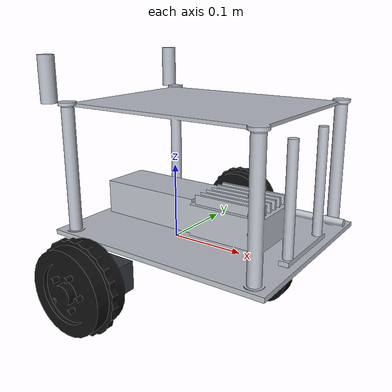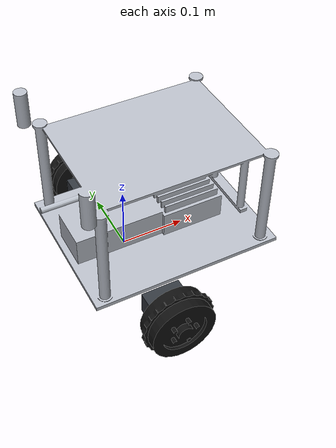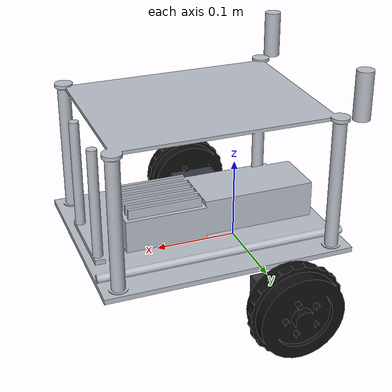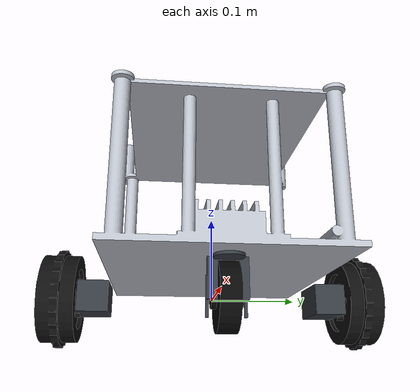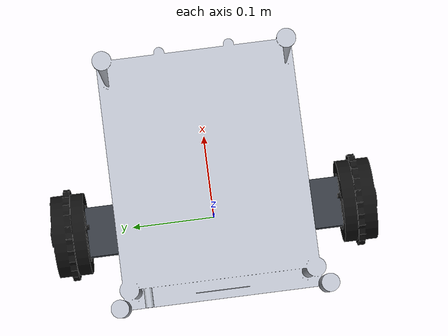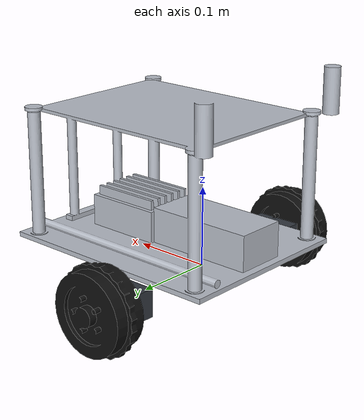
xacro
<?xml version="1.0"?>
<robot xmlns:xacro="http://www.ros.org/wiki/xacro">

    <xacro:include filename="mass_properties.xacro"/>
    <xacro:include filename="inertial_macros.xacro"/>

    <xacro:property name="mesh" value="package://mobile_robot_description/meshes"/>
    <xacro:property name="track_half" value="0.175"/>
    <xacro:property name="wheel_r" value="0.05"/>
    <xacro:property name="wheel_w" value="0.04"/>
    <!-- actuators: 12 V gear motor after the gearbox. torque [N*m] and speed [rad/s] limits at the wheel -->
    <xacro:property name="wheel_max_torque" value="2.0"/>
    <xacro:property name="wheel_max_speed" value="12.0"/>

    <material name="aluminium"><color rgba="0.72 0.74 0.78 1"/></material>
    <material name="rubber"><color rgba="0.06 0.06 0.06 1"/></material>
    <material name="motor"><color rgba="0.20 0.22 0.25 1"/></material>
    <material name="orange"><color rgba="1 0.3 0.1 1"/></material>
    <material name="black"><color rgba="0.03 0.03 0.03 1"/></material>
    <material name="lidar_grey"><color rgba="0.25 0.27 0.30 1"/></material>

    <!-- ===================================================================== sprung body -->
    <link name="base_link"/>

    <joint name="chassis_joint" type="fixed">
        <parent link="base_link"/>
        <child link="chassis"/>
        <origin xyz="-0.1 0 0"/>
    </joint>

    <link name="chassis">
        <visual>
            <geometry><mesh filename="${mesh}/chassis.stl"/></geometry>
            <material name="aluminium"/>
        </visual>
        <!-- collision: two boxes only (lower body incl. battery + computer, and the upper deck) -->
        <collision name="body_col">
            <origin xyz="0.15 0 0.07"/>
            <geometry><box size="0.30 0.24 0.10"/></geometry>
        </collision>
        <collision name="deck_col">
            <origin xyz="0.15 0 0.185"/>
            <geometry><box size="0.26 0.20 0.012"/></geometry>
        </collision>
        <xacro:inertial_chassis/>
    </link>

    <xacro:macro name="drive_side" params="side sign">
        <joint name="${side}_carrier_joint" type="prismatic">
            <parent link="base_link"/>
            <child link="${side}_carrier"/>
            <origin xyz="0 ${sign * track_half} 0"/>
            <axis xyz="0 0 1"/>
            <limit lower="${susp_free_z - 0.004}" upper="0.020" effort="200" velocity="1.0"/>
            <dynamics damping="${susp_c}" friction="0.3"/>
        </joint>

        <link name="${side}_carrier">
            <visual>
                <origin xyz="0 ${-sign * 0.0375} 0"/>
                <geometry><box size="0.060 0.035 0.035"/></geometry>
                <material name="motor"/>
            </visual>
            <xacro:call macro="inertial_${side}_carrier"/>
        </link>

        <joint name="${side}_wheel_joint" type="continuous">
            <parent link="${side}_carrier"/>
            <child link="${side}_wheel"/>
            <origin xyz="0 0 0" rpy="${-sign * pi/2} 0 0"/>
            <axis xyz="0 0 ${sign}"/>
            <limit effort="${wheel_max_torque}" velocity="${wheel_max_speed}"/>
            <!-- bearing + gearbox friction -->
            <dynamics damping="0.02" friction="0.04"/>
        </joint>

        <link name="${side}_wheel">
            <visual>
                <geometry><mesh filename="${mesh}/wheel.stl"/></geometry>
                <material name="rubber"/>
            </visual>
            <collision>
                <geometry><cylinder radius="${wheel_r}" length="${wheel_w}"/></geometry>
            </collision>
            <xacro:inertial_wheel/>
        </link>

        <!-- tyre (soft rubber on a hard floor): mu ~ 1.0. kp/kd = contact stiffness/damping (the tyre compliance). -->
        <gazebo reference="${side}_wheel">
            <mu1>1.0</mu1>
            <mu2>0.9</mu2>
            <kp>500000.0</kp>
            <kd>60.0</kd>
            <minDepth>0.0005</minDepth>
            <maxVel>0.5</maxVel>
        </gazebo>
        <gazebo reference="${side}_carrier_joint">
            <springStiffness>${susp_k}</springStiffness>
            <springReference>${susp_free_z}</springReference>
            <implicitSpringDamper>true</implicitSpringDamper>
        </gazebo>
    </xacro:macro>

    <xacro:drive_side side="left" sign="1"/>
    <xacro:drive_side side="right" sign="-1"/>

    <joint name="caster_swivel_joint" type="continuous">
        <parent link="chassis"/>
        <child link="caster_fork"/>
        <origin xyz="0.26 0 0.02"/>
        <axis xyz="0 0 1"/>
        <dynamics damping="0.02" friction="0.006"/>
    </joint>

    <link name="caster_fork">
        <visual>
            <geometry><mesh filename="${mesh}/caster_fork.stl"/></geometry>
            <material name="motor"/>
        </visual>
        <xacro:inertial_caster_fork/>
    </link>

    <joint name="caster_roll_joint" type="continuous">
        <parent link="caster_fork"/>
        <child link="caster_wheel"/>
        <origin xyz="-0.025 0 -0.035"/>
        <axis xyz="0 1 0"/>
        <dynamics damping="0.002" friction="0.002"/>
    </joint>

    <link name="caster_wheel">
        <visual>
            <geometry><mesh filename="${mesh}/caster_wheel.stl"/></geometry>
            <material name="black"/>
        </visual>
        <collision>
            <origin rpy="${pi/2} 0 0"/>
            <geometry><cylinder radius="0.035" length="0.02"/></geometry>
        </collision>
        <xacro:inertial_caster_wheel/>
    </link>

    <!-- hard polyurethane caster tyre: lower friction than the drive tyres -->
    <gazebo reference="caster_wheel">
        <mu1>0.6</mu1>
        <mu2>0.6</mu2>
        <kp>500000.0</kp>
        <kd>40.0</kd>
        <minDepth>0.0005</minDepth>
    </gazebo>

</robot>

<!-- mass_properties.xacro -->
<!-- GENERATED by tools/gen_mass_properties.py. Do not edit by hand: edit the PARTS table and re-run. -->
<robot xmlns:xacro="http://www.ros.org/wiki/xacro">

    <xacro:property name="total_mass" value="4.8350"/>
    <xacro:property name="susp_k" value="1450"/>          <!-- N/m, per drive wheel -->
    <xacro:property name="susp_c" value="52.6"/>           <!-- N*s/m, damping ratio 0.6 -->
    <xacro:property name="susp_sag" value="0.00897"/>   <!-- m, static compression under load -->
    <xacro:property name="susp_free_z" value="-0.00897"/>  <!-- carrier hangs this far below the loaded pose -->

    <xacro:macro name="inertial_chassis">
        <inertial>
            <origin xyz="0.136751 0 0.0727219" rpy="0 0 0"/>
            <mass value="3.506"/>
            <inertia ixx="0.0270984" ixy="0" ixz="0.00126037" iyy="0.0413062" iyz="0" izz="0.0403188"/>
        </inertial>
    </xacro:macro>

    <xacro:macro name="inertial_left_carrier">
        <inertial>
            <origin xyz="0 -0.0332576 0" rpy="0 0 0"/>
            <mass value="0.33"/>
            <inertia ixx="8.89356e-05" ixy="0" ixz="0" iyy="0.000127854" iyz="0" izz="0.000132415"/>
        </inertial>
    </xacro:macro>

    <xacro:macro name="inertial_right_carrier">
        <inertial>
            <origin xyz="0 0.0332576 0" rpy="0 0 0"/>
            <mass value="0.33"/>
            <inertia ixx="8.89356e-05" ixy="0" ixz="0" iyy="0.000127854" iyz="0" izz="0.000132415"/>
        </inertial>
    </xacro:macro>

    <xacro:macro name="inertial_wheel">
        <inertial>
            <origin xyz="0 0 0" rpy="0 0 0"/>
            <mass value="0.14"/>
            <inertia ixx="0.000117792" ixy="0" ixz="0" iyy="0.000117792" iyz="0" izz="0.00019825"/>
        </inertial>
    </xacro:macro>

    <xacro:macro name="inertial_caster_fork">
        <inertial>
            <origin xyz="-0.0125 0 -0.0175" rpy="0 0 0"/>
            <mass value="0.06"/>
            <inertia ixx="1.4625e-05" ixy="0" ixz="0" iyy="1.4625e-05" iyz="0" izz="9e-06"/>
        </inertial>
    </xacro:macro>

    <xacro:macro name="inertial_caster_wheel">
        <inertial>
            <origin xyz="0 0 0" rpy="0 0 0"/>
            <mass value="0.04"/>
            <inertia ixx="1.35833e-05" ixy="0" ixz="0" iyy="2.45e-05" iyz="0" izz="1.35833e-05"/>
        </inertial>
    </xacro:macro>

    <xacro:macro name="inertial_laser">
        <inertial>
            <origin xyz="0 0 -0.002" rpy="0 0 0"/>
            <mass value="0.17"/>
            <inertia ixx="0.000120587" ixy="0" ixz="0" iyy="0.000120587" iyz="0" izz="0.00019584"/>
        </inertial>
    </xacro:macro>

    <xacro:macro name="inertial_camera">
        <inertial>
            <origin xyz="-0.003 0 0" rpy="0 0 0"/>
            <mass value="0.114"/>
            <inertia ixx="0.000143167" ixy="0" ixz="0" iyy="3.67674e-05" iyz="0" izz="0.0001235"/>
        </inertial>
    </xacro:macro>

    <xacro:macro name="inertial_imu">
        <inertial>
            <origin xyz="0 0 0" rpy="0 0 0"/>
            <mass value="0.005"/>
            <inertia ixx="1.70417e-07" ixy="0" ixz="0" iyy="1.70417e-07" iyz="0" izz="3.33333e-07"/>
        </inertial>
    </xacro:macro>

</robot>
